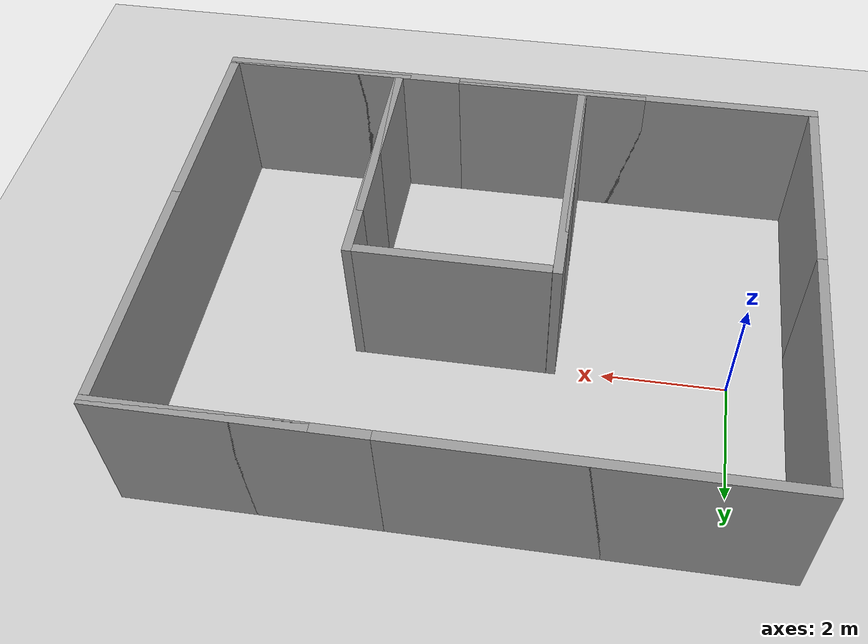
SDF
<sdf version="1.6">
 <world name="default">
  <light name="sun" type="directional">
   <pose>0 0 10 0 -0 0</pose>
   <diffuse>0.8 0.8 0.8 1</diffuse>
   <specular>0.2 0.2 0.2 1</specular>
   <attenuation>
    <range>1000</range>
    <constant>0.9</constant>
    <linear>0.01</linear>
    <quadratic>0.001</quadratic>
   </attenuation>
   <direction>-0.5 0.1 -0.9</direction>
  </light>
  <model name="ground_plane">
   <static>1</static>
   <link name="link">
    <collision name="collision">
     <geometry><plane><normal>0 0 1</normal><size>100 100</size></plane></geometry>
     <surface>
      <contact><collide_bitmask>65535</collide_bitmask></contact>
      <friction><ode><mu>100</mu><mu2>50</mu2></ode></friction>
     </surface>
    </collision>
    <visual name="visual">
     <cast_shadows>0</cast_shadows>
     <geometry><plane><normal>0 0 1</normal><size>100 100</size></plane></geometry>
     <material>
      <script><uri>file://media/materials/scripts/gazebo.material</uri><name>Gazebo/Grey</name></script>
     </material>
    </visual>
   </link>
  </model>
  <gravity>0 0 -9.8</gravity>
  <magnetic_field>6e-06 2.3e-05 -4.2e-05</magnetic_field>
  <atmosphere type="adiabatic"/>
  <physics name="default_physics" default="0" type="ode">
   <max_step_size>0.001</max_step_size>
   <real_time_factor>1</real_time_factor>
   <real_time_update_rate>1000</real_time_update_rate>
  </physics>
  <scene><ambient>0.4 0.4 0.4 1</ambient><background>0.7 0.7 0.7 1</background><shadows>1</shadows></scene>
  <audio><device>default</device></audio>
  <spherical_coordinates>
   <surface_model>EARTH_WGS84</surface_model>
   <latitude_deg>0</latitude_deg>
   <longitude_deg>0</longitude_deg>
   <elevation>0</elevation>
   <heading_deg>0</heading_deg>
  </spherical_coordinates>
  <model name="wall_6m">
   <pose>1.93944 3.15158 0 0 -0 0</pose>
   <link name="Wall_0">
    <collision name="Wall_0_Collision">
     <geometry><box><size>3.16 0.15 2.5</size></box></geometry>
     <pose>0 0 1.25 0 -0 0</pose>
    </collision>
    <visual name="Wall_0_Visual">
     <pose>0 0 1.25 0 -0 0</pose>
     <geometry><box><size>3.16 0.15 2.5</size></box></geometry>
     <material>
      <script><uri>file://media/materials/scripts/gazebo.material</uri><name>Gazebo/Grey</name></script>
      <ambient>1 1 1 1</ambient>
     </material>
     <meta><layer>0</layer></meta>
    </visual>
    <pose>1.42 0 0 0 -0 0</pose>
   </link>
   <link name="Wall_1">
    <collision name="Wall_1_Collision">
     <geometry><box><size>6 0.15 2.5</size></box></geometry>
     <pose>0 0 1.25 0 -0 0</pose>
    </collision>
    <visual name="Wall_1_Visual">
     <pose>0 0 1.25 0 -0 0</pose>
     <geometry><box><size>6 0.15 2.5</size></box></geometry>
     <material>
      <script><uri>file://media/materials/scripts/gazebo.material</uri><name>Gazebo/Grey</name></script>
      <ambient>1 1 1 1</ambient>
     </material>
     <meta><layer>0</layer></meta>
    </visual>
    <pose>0 0 0 0 -0 3.14159</pose>
   </link>
   <static>1</static>
  </model>
  <model name="wall_4m">
   <pose>6.93911 3.15249 0 0 -0 0</pose>
   <link name="Wall_0">
    <collision name="Wall_0_Collision">
     <geometry><box><size>3.16 0.15 2.5</size></box></geometry>
     <pose>0 0 1.25 0 -0 0</pose>
    </collision>
    <visual name="Wall_0_Visual">
     <pose>0 0 1.25 0 -0 0</pose>
     <geometry><box><size>3.16 0.15 2.5</size></box></geometry>
     <material>
      <script><uri>file://media/materials/scripts/gazebo.material</uri><name>Gazebo/Grey</name></script>
      <ambient>1 1 1 1</ambient>
     </material>
     <meta><layer>0</layer></meta>
    </visual>
    <pose>0.42 0 0 0 -0 0</pose>
   </link>
   <link name="Wall_1">
    <collision name="Wall_1_Collision">
     <geometry><box><size>4 0.15 2.5</size></box></geometry>
     <pose>0 0 1.25 0 -0 0</pose>
    </collision>
    <visual name="Wall_1_Visual">
     <pose>0 0 1.25 0 -0 0</pose>
     <geometry><box><size>4 0.15 2.5</size></box></geometry>
     <material>
      <script><uri>file://media/materials/scripts/gazebo.material</uri><name>Gazebo/Grey</name></script>
      <ambient>1 1 1 1</ambient>
     </material>
     <meta><layer>0</layer></meta>
    </visual>
    <pose>0 0 0 0 -0 3.14159</pose>
   </link>
   <static>1</static>
  </model>
  <model name="wall_6m_0">
   <pose>1.92237 -3.99907 0 0 -0 0</pose>
   <link name="Wall_0">
    <collision name="Wall_0_Collision">
     <geometry><box><size>3.16 0.15 2.5</size></box></geometry>
     <pose>0 0 1.25 0 -0 0</pose>
    </collision>
    <visual name="Wall_0_Visual">
     <pose>0 0 1.25 0 -0 0</pose>
     <geometry><box><size>3.16 0.15 2.5</size></box></geometry>
     <material>
      <script><uri>file://media/materials/scripts/gazebo.material</uri><name>Gazebo/Grey</name></script>
      <ambient>1 1 1 1</ambient>
     </material>
     <meta><layer>0</layer></meta>
    </visual>
    <pose>1.42 0 0 0 -0 0</pose>
   </link>
   <link name="Wall_1">
    <collision name="Wall_1_Collision">
     <geometry><box><size>6 0.15 2.5</size></box></geometry>
     <pose>0 0 1.25 0 -0 0</pose>
    </collision>
    <visual name="Wall_1_Visual">
     <pose>0 0 1.25 0 -0 0</pose>
     <geometry><box><size>6 0.15 2.5</size></box></geometry>
     <material>
      <script><uri>file://media/materials/scripts/gazebo.material</uri><name>Gazebo/Grey</name></script>
      <ambient>1 1 1 1</ambient>
     </material>
     <meta><layer>0</layer></meta>
    </visual>
    <pose>0 0 0 0 -0 3.14159</pose>
   </link>
   <static>1</static>
  </model>
  <model name="wall_7m">
   <pose>-0.994301 -0.423095 0 0 0 -1.57315</pose>
   <link name="Wall_0">
    <collision name="Wall_0_Collision">
     <geometry><box><size>3.16 0.15 2.5</size></box></geometry>
     <pose>0 0 1.25 0 -0 0</pose>
    </collision>
    <visual name="Wall_0_Visual">
     <pose>0 0 1.25 0 -0 0</pose>
     <geometry><box><size>3.16 0.15 2.5</size></box></geometry>
     <material>
      <script><uri>file://media/materials/scripts/gazebo.material</uri><name>Gazebo/Grey</name></script>
      <ambient>1 1 1 1</ambient>
     </material>
     <meta><layer>0</layer></meta>
    </visual>
    <pose>1.92 0 0 0 -0 0</pose>
   </link>
   <link name="Wall_1">
    <collision name="Wall_1_Collision">
     <geometry><box><size>7 0.15 2.5</size></box></geometry>
     <pose>0 0 1.25 0 -0 0</pose>
    </collision>
    <visual name="Wall_1_Visual">
     <pose>0 0 1.25 0 -0 0</pose>
     <geometry><box><size>7 0.15 2.5</size></box></geometry>
     <material>
      <script><uri>file://media/materials/scripts/gazebo.material</uri><name>Gazebo/Grey</name></script>
      <ambient>1 1 1 1</ambient>
     </material>
     <meta><layer>0</layer></meta>
    </visual>
    <pose>0 0 0 0 -0 3.14159</pose>
   </link>
   <static>1</static>
  </model>
  <model name="wall_7m_0">
   <pose>8.85487 -0.423126 0 0 0 -1.57337</pose>
   <link name="Wall_0">
    <collision name="Wall_0_Collision">
     <geometry><box><size>3.16 0.15 2.5</size></box></geometry>
     <pose>0 0 1.25 0 -0 0</pose>
    </collision>
    <visual name="Wall_0_Visual">
     <pose>0 0 1.25 0 -0 0</pose>
     <geometry><box><size>3.16 0.15 2.5</size></box></geometry>
     <material>
      <script><uri>file://media/materials/scripts/gazebo.material</uri><name>Gazebo/Grey</name></script>
      <ambient>1 1 1 1</ambient>
     </material>
     <meta><layer>0</layer></meta>
    </visual>
    <pose>1.92 0 0 0 -0 0</pose>
   </link>
   <link name="Wall_1">
    <collision name="Wall_1_Collision">
     <geometry><box><size>7 0.15 2.5</size></box></geometry>
     <pose>0 0 1.25 0 -0 0</pose>
    </collision>
    <visual name="Wall_1_Visual">
     <pose>0 0 1.25 0 -0 0</pose>
     <geometry><box><size>7 0.15 2.5</size></box></geometry>
     <material>
      <script><uri>file://media/materials/scripts/gazebo.material</uri><name>Gazebo/Grey</name></script>
      <ambient>1 1 1 1</ambient>
     </material>
     <meta><layer>0</layer></meta>
    </visual>
    <pose>0 0 0 0 -0 3.14159</pose>
   </link>
   <static>1</static>
  </model>
  <model name="wall_4m_0">
   <pose>6.92263 -3.99874 0 0 -0 0</pose>
   <link name="Wall_0">
    <collision name="Wall_0_Collision">
     <geometry><box><size>3.16 0.15 2.5</size></box></geometry>
     <pose>0 0 1.25 0 -0 0</pose>
    </collision>
    <visual name="Wall_0_Visual">
     <pose>0 0 1.25 0 -0 0</pose>
     <geometry><box><size>3.16 0.15 2.5</size></box></geometry>
     <material>
      <script><uri>file://media/materials/scripts/gazebo.material</uri><name>Gazebo/Grey</name></script>
      <ambient>1 1 1 1</ambient>
     </material>
     <meta><layer>0</layer></meta>
    </visual>
    <pose>0.42 0 0 0 -0 0</pose>
   </link>
   <link name="Wall_1">
    <collision name="Wall_1_Collision">
     <geometry><box><size>4 0.15 2.5</size></box></geometry>
     <pose>0 0 1.25 0 -0 0</pose>
    </collision>
    <visual name="Wall_1_Visual">
     <pose>0 0 1.25 0 -0 0</pose>
     <geometry><box><size>4 0.15 2.5</size></box></geometry>
     <material>
      <script><uri>file://media/materials/scripts/gazebo.material</uri><name>Gazebo/Grey</name></script>
      <ambient>1 1 1 1</ambient>
     </material>
     <meta><layer>0</layer></meta>
    </visual>
    <pose>0 0 0 0 -0 3.14159</pose>
   </link>
   <static>1</static>
  </model>
  <model name="wall_0">
   <pose>4.40755 -0.009063 0 0 -0 0</pose>
   <link name="Wall_0">
    <collision name="Wall_0_Collision">
     <geometry><box><size>3 0.15 2.5</size></box></geometry>
     <pose>0 0 1.25 0 -0 0</pose>
    </collision>
    <visual name="Wall_0_Visual">
     <pose>0 0 1.25 0 -0 0</pose>
     <geometry><box><size>3 0.15 2.5</size></box></geometry>
     <material>
      <script><uri>file://media/materials/scripts/gazebo.material</uri><name>Gazebo/Grey</name></script>
      <ambient>1 1 1 1</ambient>
     </material>
     <meta><layer>0</layer></meta>
    </visual>
    <pose>0 0 0 0 -0 3.14159</pose>
   </link>
   <static>1</static>
  </model>
  <model name="wall_4m_1">
   <pose>5.96977 -1.93284 0 0 0 -1.57449</pose>
   <link name="Wall_0">
    <collision name="Wall_0_Collision">
     <geometry><box><size>3.16 0.15 2.5</size></box></geometry>
     <pose>0 0 1.25 0 -0 0</pose>
    </collision>
    <visual name="Wall_0_Visual">
     <pose>0 0 1.25 0 -0 0</pose>
     <geometry><box><size>3.16 0.15 2.5</size></box></geometry>
     <material>
      <script><uri>file://media/materials/scripts/gazebo.material</uri><name>Gazebo/Grey</name></script>
      <ambient>1 1 1 1</ambient>
     </material>
     <meta><layer>0</layer></meta>
    </visual>
    <pose>0.42 0 0 0 -0 0</pose>
   </link>
   <link name="Wall_1">
    <collision name="Wall_1_Collision">
     <geometry><box><size>4 0.15 2.5</size></box></geometry>
     <pose>0 0 1.25 0 -0 0</pose>
    </collision>
    <visual name="Wall_1_Visual">
     <pose>0 0 1.25 0 -0 0</pose>
     <geometry><box><size>4 0.15 2.5</size></box></geometry>
     <material>
      <script><uri>file://media/materials/scripts/gazebo.material</uri><name>Gazebo/Grey</name></script>
      <ambient>1 1 1 1</ambient>
     </material>
     <meta><layer>0</layer></meta>
    </visual>
    <pose>0 0 0 0 -0 3.14159</pose>
   </link>
   <static>1</static>
  </model>
  <model name="wall_4m_2">
   <pose>2.82571 -1.9342 0 0 0 -1.57227</pose>
   <link name="Wall_0">
    <collision name="Wall_0_Collision">
     <geometry><box><size>3.16 0.15 2.5</size></box></geometry>
     <pose>0 0 1.25 0 -0 0</pose>
    </collision>
    <visual name="Wall_0_Visual">
     <pose>0 0 1.25 0 -0 0</pose>
     <geometry><box><size>3.16 0.15 2.5</size></box></geometry>
     <material>
      <script><uri>file://media/materials/scripts/gazebo.material</uri><name>Gazebo/Grey</name></script>
      <ambient>1 1 1 1</ambient>
     </material>
     <meta><layer>0</layer></meta>
    </visual>
    <pose>0.42 0 0 0 -0 0</pose>
   </link>
   <link name="Wall_1">
    <collision name="Wall_1_Collision">
     <geometry><box><size>4 0.15 2.5</size></box></geometry>
     <pose>0 0 1.25 0 -0 0</pose>
    </collision>
    <visual name="Wall_1_Visual">
     <pose>0 0 1.25 0 -0 0</pose>
     <geometry><box><size>4 0.15 2.5</size></box></geometry>
     <material>
      <script><uri>file://media/materials/scripts/gazebo.material</uri><name>Gazebo/Grey</name></script>
      <ambient>1 1 1 1</ambient>
     </material>
     <meta><layer>0</layer></meta>
    </visual>
    <pose>0 0 0 0 -0 3.14159</pose>
   </link>
   <static>1</static>
  </model>
 </world>
</sdf>
